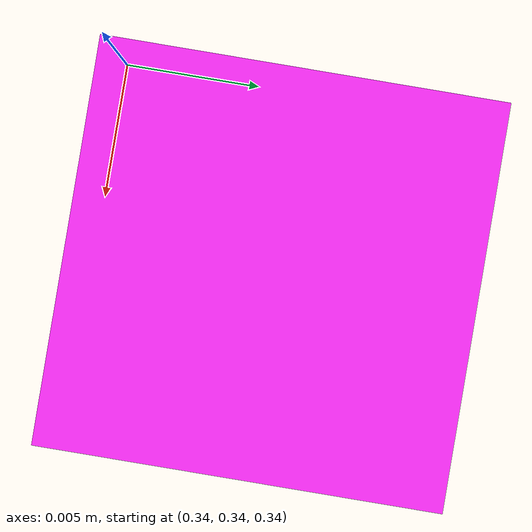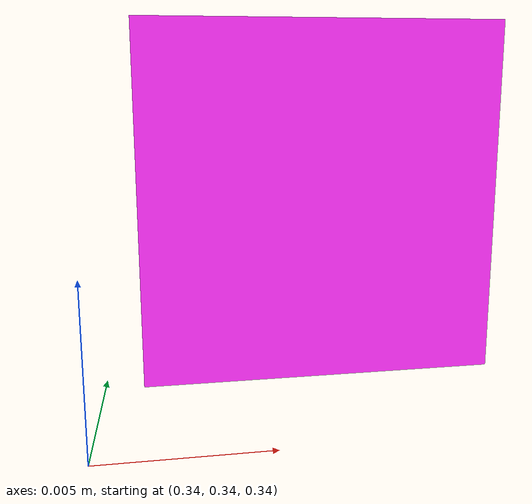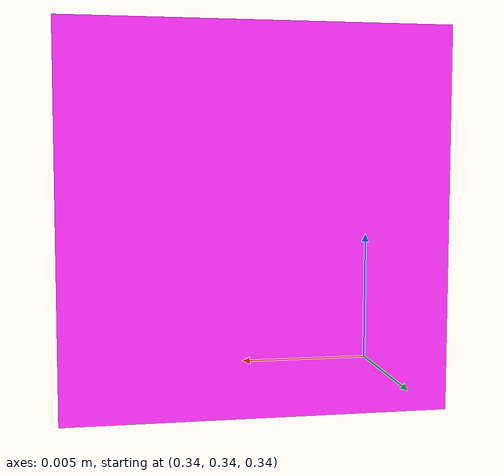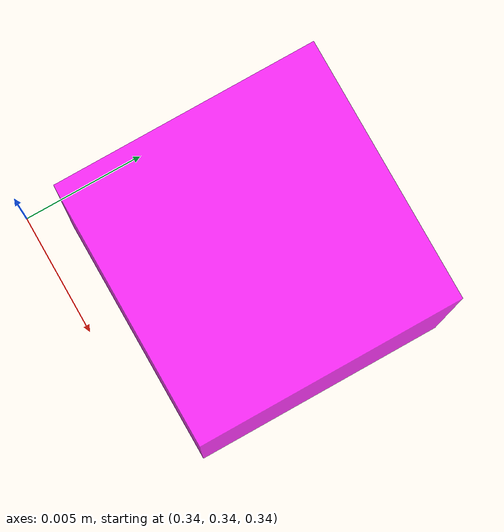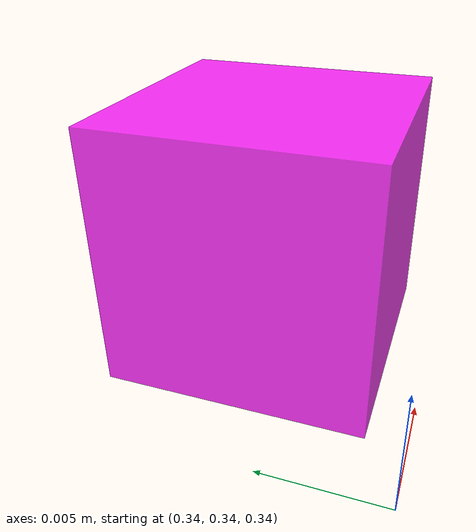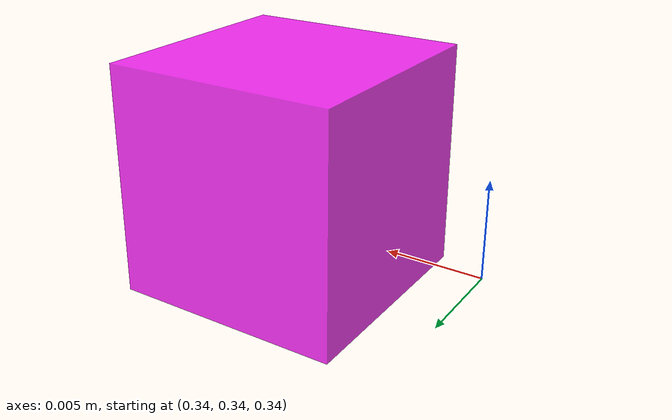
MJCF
<mujoco model="bottom_watertight_tiny">

  <asset>
    <mesh file="bottom_watertight_tiny.obj"/>
    <mesh file="bottom_watertight_tiny_collision_0.obj"/>
  </asset>
  <worldbody>
    <body name="bottom_watertight_tiny">
      <freejoint/>
      <geom solimp="0.90 0.95 0.001" solref="0.02 1.0" density="100" friction="0.95 0.4 0.3" rgba="1 0 1 0.8" mesh="bottom_watertight_tiny" group="2" type="mesh" contype="0" conaffinity="0"/>
      <geom solimp="0.90 0.95 0.001" solref="0.02 1.0" density="100" friction="0.95 0.4 0.3" mesh="bottom_watertight_tiny_collision_0" rgba="0.7680701970220749 0.8993220047655524 0.5394664547245673 1"  group="3" type="mesh"/>
    </body>
  </worldbody>
</mujoco>
